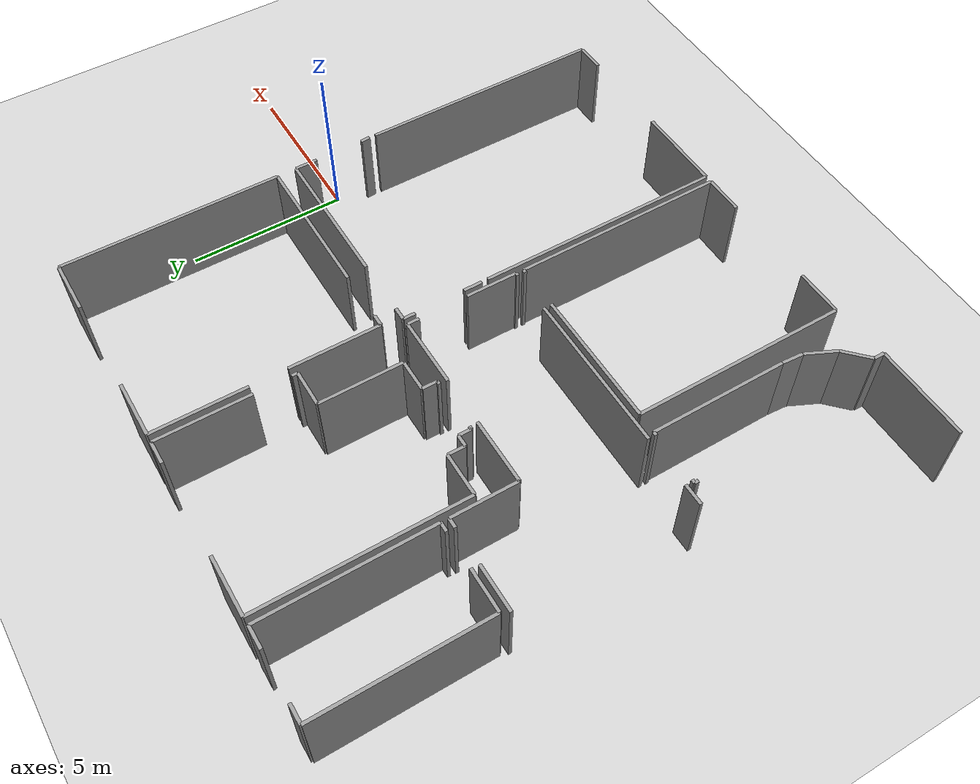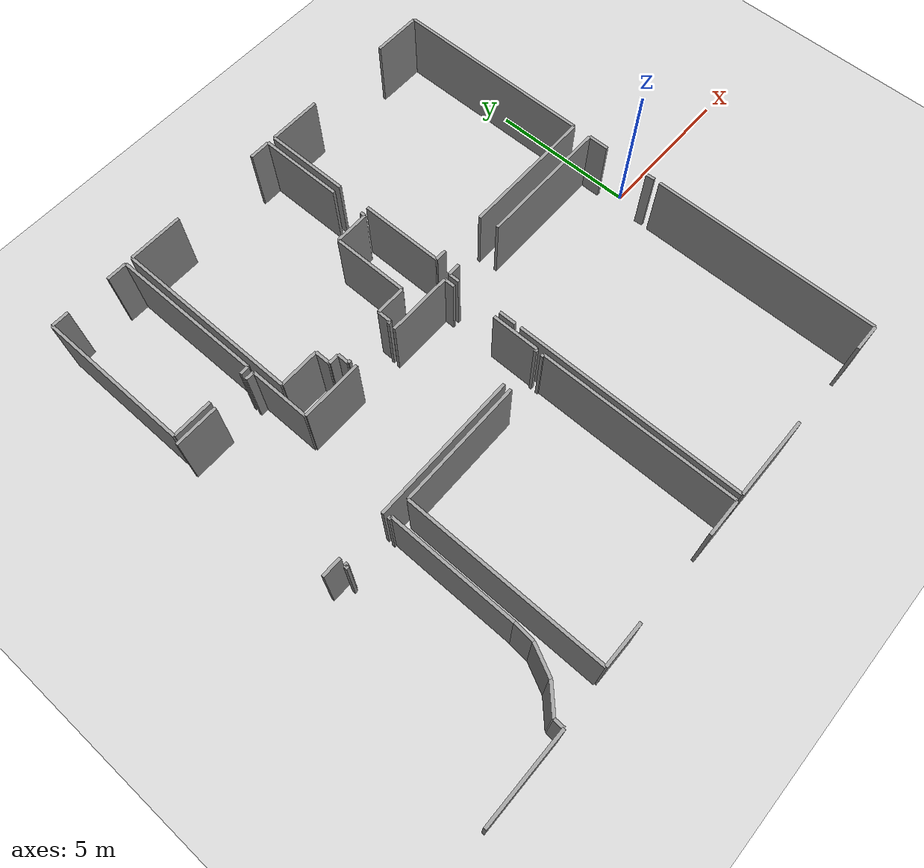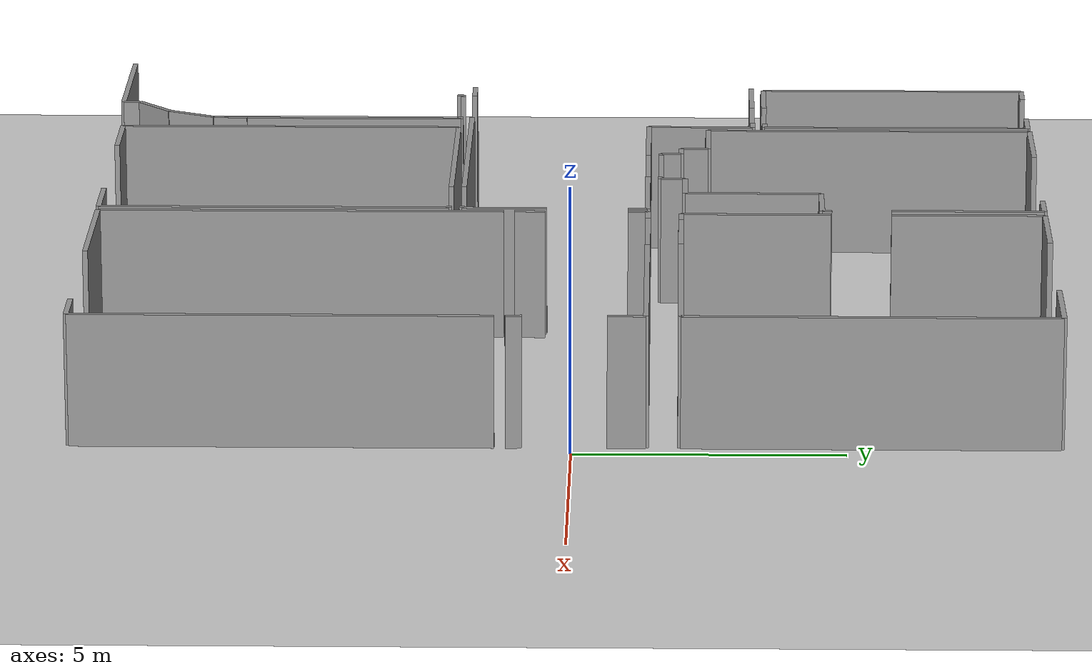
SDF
<sdf version="1.6">
 <world name="default">
  <model name="ground_plane">
   <static>1</static>
   <link name="link">
    <collision name="collision">
     <geometry><plane><normal>0 0 1</normal><size>100 100</size></plane></geometry>
     <surface><friction><ode><mu>100</mu><mu2>50</mu2></ode></friction></surface>
    </collision>
    <visual name="visual">
     <cast_shadows>0</cast_shadows>
     <geometry><plane><normal>0 0 1</normal><size>100 100</size></plane></geometry>
     <material>
      <script><uri>file://media/materials/scripts/gazebo.material</uri><name>Gazebo/Grey</name></script>
     </material>
    </visual>
   </link>
  </model>
  <model name="0510034869_A-40">
   <static>1</static>
   <link name="Wall_48">
    <collision name="Wall_48_Collision">
     <geometry><box><size>2.9826031746 0.1 2.5</size></box></geometry>
     <pose>1.4913015873 0 1.25 0 0 0</pose>
    </collision>
    <visual name="Wall_48_Visual">
     <pose>1.4913015873 0 1.25 0 0 0</pose>
     <geometry><box><size>2.9826031746 0.1 2.5</size></box></geometry>
     <material>
      <script><uri>file://media/materials/scripts/gazebo.material</uri><name>Gazebo/Grey</name></script>
      <ambient>1 1 1 1</ambient>
     </material>
    </visual>
    <pose>17.5939047619 -18.5479365079 0 0 0 3.14159265359</pose>
   </link>
   <link name="Wall_61">
    <collision name="Wall_61_Collision">
     <geometry><box><size>0.119238095238 0.1 2.5</size></box></geometry>
     <pose>0.059619047619 0 1.25 0 0 0</pose>
    </collision>
    <visual name="Wall_61_Visual">
     <pose>0.059619047619 0 1.25 0 0 0</pose>
     <geometry><box><size>0.119238095238 0.1 2.5</size></box></geometry>
     <material>
      <script><uri>file://media/materials/scripts/gazebo.material</uri><name>Gazebo/Grey</name></script>
      <ambient>1 1 1 1</ambient>
     </material>
    </visual>
    <pose>16.9984761905 -11.8361904762 0 0 0 1.57079632679</pose>
   </link>
   <link name="Wall_62">
    <collision name="Wall_62_Collision">
     <geometry><box><size>0.102476190476 0.1 2.5</size></box></geometry>
     <pose>0.0512380952381 0 1.25 0 0 0</pose>
    </collision>
    <visual name="Wall_62_Visual">
     <pose>0.0512380952381 0 1.25 0 0 0</pose>
     <geometry><box><size>0.102476190476 0.1 2.5</size></box></geometry>
     <material>
      <script><uri>file://media/materials/scripts/gazebo.material</uri><name>Gazebo/Grey</name></script>
      <ambient>1 1 1 1</ambient>
     </material>
    </visual>
    <pose>16.9984761905 -11.716952381 0 0 0 0.0</pose>
   </link>
   <link name="Wall_63">
    <collision name="Wall_63_Collision">
     <geometry><box><size>0.113650793651 0.1 2.5</size></box></geometry>
     <pose>0.0568253968254 0 1.25 0 0 0</pose>
    </collision>
    <visual name="Wall_63_Visual">
     <pose>0.0568253968254 0 1.25 0 0 0</pose>
     <geometry><box><size>0.113650793651 0.1 2.5</size></box></geometry>
     <material>
      <script><uri>file://media/materials/scripts/gazebo.material</uri><name>Gazebo/Grey</name></script>
      <ambient>1 1 1 1</ambient>
     </material>
    </visual>
    <pose>18.6581587302 -11.716952381 0 0 0 0.0</pose>
   </link>
   <link name="Wall_64">
    <collision name="Wall_64_Collision">
     <geometry><box><size>4.26641269841 0.1 2.5</size></box></geometry>
     <pose>2.13320634921 0 1.25 0 0 0</pose>
    </collision>
    <visual name="Wall_64_Visual">
     <pose>2.13320634921 0 1.25 0 0 0</pose>
     <geometry><box><size>4.26641269841 0.1 2.5</size></box></geometry>
     <material>
      <script><uri>file://media/materials/scripts/gazebo.material</uri><name>Gazebo/Grey</name></script>
      <ambient>1 1 1 1</ambient>
     </material>
    </visual>
    <pose>18.7718095238 -11.716952381 0 0 0 -1.57079632679</pose>
   </link>
   <link name="Wall_65">
    <collision name="Wall_65_Collision">
     <geometry><box><size>0.671112060188 0.1 2.5</size></box></geometry>
     <pose>0.335556030094 0 1.25 0 0 0</pose>
    </collision>
    <visual name="Wall_65_Visual">
     <pose>0.335556030094 0 1.25 0 0 0</pose>
     <geometry><box><size>0.671112060188 0.1 2.5</size></box></geometry>
     <material>
      <script><uri>file://media/materials/scripts/gazebo.material</uri><name>Gazebo/Grey</name></script>
      <ambient>1 1 1 1</ambient>
     </material>
    </visual>
    <pose>18.7718095238 -15.9833650794 0 0 0 -1.64617505707</pose>
   </link>
   <link name="Wall_66">
    <collision name="Wall_66_Collision">
     <geometry><box><size>1.00820407697 0.1 2.5</size></box></geometry>
     <pose>0.504102038486 0 1.25 0 0 0</pose>
    </collision>
    <visual name="Wall_66_Visual">
     <pose>0.504102038486 0 1.25 0 0 0</pose>
     <geometry><box><size>1.00820407697 0.1 2.5</size></box></geometry>
     <material>
      <script><uri>file://media/materials/scripts/gazebo.material</uri><name>Gazebo/Grey</name></script>
      <ambient>1 1 1 1</ambient>
     </material>
    </visual>
    <pose>18.7212698413 -16.6525714286 0 0 0 -2.01765772602</pose>
   </link>
   <link name="Wall_67">
    <collision name="Wall_67_Collision">
     <geometry><box><size>0.951063308609 0.1 2.5</size></box></geometry>
     <pose>0.475531654304 0 1.25 0 0 0</pose>
    </collision>
    <visual name="Wall_67_Visual">
     <pose>0.475531654304 0 1.25 0 0 0</pose>
     <geometry><box><size>0.951063308609 0.1 2.5</size></box></geometry>
     <material>
      <script><uri>file://media/materials/scripts/gazebo.material</uri><name>Gazebo/Grey</name></script>
      <ambient>1 1 1 1</ambient>
     </material>
    </visual>
    <pose>18.2855873016 -17.5617777778 0 0 0 -2.37970512576</pose>
   </link>
   <link name="Wall_68">
    <collision name="Wall_68_Collision">
     <geometry><box><size>0.329669967892 0.1 2.5</size></box></geometry>
     <pose>0.164834983946 0 1.25 0 0 0</pose>
    </collision>
    <visual name="Wall_68_Visual">
     <pose>0.164834983946 0 1.25 0 0 0</pose>
     <geometry><box><size>0.329669967892 0.1 2.5</size></box></geometry>
     <material>
      <script><uri>file://media/materials/scripts/gazebo.material</uri><name>Gazebo/Grey</name></script>
      <ambient>1 1 1 1</ambient>
     </material>
    </visual>
    <pose>17.5974603175 -18.2182857143 0 0 0 -1.58158173292</pose>
   </link>
   <link name="Wall_69">
    <collision name="Wall_69_Collision">
     <geometry><box><size>0.101333333333 0.1 2.5</size></box></geometry>
     <pose>0.0506666666667 0 1.25 0 0 0</pose>
    </collision>
    <visual name="Wall_69_Visual">
     <pose>0.0506666666667 0 1.25 0 0 0</pose>
     <geometry><box><size>0.101333333333 0.1 2.5</size></box></geometry>
     <material>
      <script><uri>file://media/materials/scripts/gazebo.material</uri><name>Gazebo/Grey</name></script>
      <ambient>1 1 1 1</ambient>
     </material>
    </visual>
    <pose>25.1734603175 -11.4876190476 0 0 0 3.14159265359</pose>
   </link>
   <link name="Wall_70">
    <collision name="Wall_70_Collision">
     <geometry><box><size>5.04101587302 0.1 2.5</size></box></geometry>
     <pose>2.52050793651 0 1.25 0 0 0</pose>
    </collision>
    <visual name="Wall_70_Visual">
     <pose>2.52050793651 0 1.25 0 0 0</pose>
     <geometry><box><size>5.04101587302 0.1 2.5</size></box></geometry>
     <material>
      <script><uri>file://media/materials/scripts/gazebo.material</uri><name>Gazebo/Grey</name></script>
      <ambient>1 1 1 1</ambient>
     </material>
    </visual>
    <pose>23.7102222222 -11.4876190476 0 0 0 3.14159265359</pose>
   </link>
   <link name="Wall_71">
    <collision name="Wall_71_Collision">
     <geometry><box><size>0.660317460317 0.1 2.5</size></box></geometry>
     <pose>0.330158730159 0 1.25 0 0 0</pose>
    </collision>
    <visual name="Wall_71_Visual">
     <pose>0.330158730159 0 1.25 0 0 0</pose>
     <geometry><box><size>0.660317460317 0.1 2.5</size></box></geometry>
     <material>
      <script><uri>file://media/materials/scripts/gazebo.material</uri><name>Gazebo/Grey</name></script>
      <ambient>1 1 1 1</ambient>
     </material>
    </visual>
    <pose>17.0683174603 -11.4876190476 0 0 0 3.14159265359</pose>
   </link>
   <link name="Wall_73">
    <collision name="Wall_73_Collision">
     <geometry><box><size>1.45968253968 0.1 2.5</size></box></geometry>
     <pose>0.729841269841 0 1.25 0 0 0</pose>
    </collision>
    <visual name="Wall_73_Visual">
     <pose>0.729841269841 0 1.25 0 0 0</pose>
     <geometry><box><size>1.45968253968 0.1 2.5</size></box></geometry>
     <material>
      <script><uri>file://media/materials/scripts/gazebo.material</uri><name>Gazebo/Grey</name></script>
      <ambient>1 1 1 1</ambient>
     </material>
    </visual>
    <pose>16.408 -5.89320634921 0 0 0 0.0</pose>
   </link>
   <link name="Wall_74">
    <collision name="Wall_74_Collision">
     <geometry><box><size>0.309333333333 0.1 2.5</size></box></geometry>
     <pose>0.154666666667 0 1.25 0 0 0</pose>
    </collision>
    <visual name="Wall_74_Visual">
     <pose>0.154666666667 0 1.25 0 0 0</pose>
     <geometry><box><size>0.309333333333 0.1 2.5</size></box></geometry>
     <material>
      <script><uri>file://media/materials/scripts/gazebo.material</uri><name>Gazebo/Grey</name></script>
      <ambient>1 1 1 1</ambient>
     </material>
    </visual>
    <pose>19.0306031746 -5.89320634921 0 0 0 0.0</pose>
   </link>
   <link name="Wall_75">
    <collision name="Wall_75_Collision">
     <geometry><box><size>2.05892063492 0.1 2.5</size></box></geometry>
     <pose>1.02946031746 0 1.25 0 0 0</pose>
    </collision>
    <visual name="Wall_75_Visual">
     <pose>1.02946031746 0 1.25 0 0 0</pose>
     <geometry><box><size>2.05892063492 0.1 2.5</size></box></geometry>
     <material>
      <script><uri>file://media/materials/scripts/gazebo.material</uri><name>Gazebo/Grey</name></script>
      <ambient>1 1 1 1</ambient>
     </material>
    </visual>
    <pose>19.3399365079 -5.89320634921 0 0 0 -1.57079632679</pose>
   </link>
   <link name="Wall_76">
    <collision name="Wall_76_Collision">
     <geometry><box><size>2.07301587302 0.1 2.5</size></box></geometry>
     <pose>1.03650793651 0 1.25 0 0 0</pose>
    </collision>
    <visual name="Wall_76_Visual">
     <pose>1.03650793651 0 1.25 0 0 0</pose>
     <geometry><box><size>2.07301587302 0.1 2.5</size></box></geometry>
     <material>
      <script><uri>file://media/materials/scripts/gazebo.material</uri><name>Gazebo/Grey</name></script>
      <ambient>1 1 1 1</ambient>
     </material>
    </visual>
    <pose>19.3399365079 -7.95212698413 0 0 0 0.0</pose>
   </link>
   <link name="Wall_77">
    <collision name="Wall_77_Collision">
     <geometry><box><size>2.21803174603 0.1 2.5</size></box></geometry>
     <pose>1.10901587302 0 1.25 0 0 0</pose>
    </collision>
    <visual name="Wall_77_Visual">
     <pose>1.10901587302 0 1.25 0 0 0</pose>
     <geometry><box><size>2.21803174603 0.1 2.5</size></box></geometry>
     <material>
      <script><uri>file://media/materials/scripts/gazebo.material</uri><name>Gazebo/Grey</name></script>
      <ambient>1 1 1 1</ambient>
     </material>
    </visual>
    <pose>22.9612698413 -7.95212698413 0 0 0 0.0</pose>
   </link>
   <link name="Wall_78">
    <collision name="Wall_78_Collision">
     <geometry><box><size>0.369777777778 0.1 2.5</size></box></geometry>
     <pose>0.184888888889 0 1.25 0 0 0</pose>
    </collision>
    <visual name="Wall_78_Visual">
     <pose>0.184888888889 0 1.25 0 0 0</pose>
     <geometry><box><size>0.369777777778 0.1 2.5</size></box></geometry>
     <material>
      <script><uri>file://media/materials/scripts/gazebo.material</uri><name>Gazebo/Grey</name></script>
      <ambient>1 1 1 1</ambient>
     </material>
    </visual>
    <pose>25.1793015873 -7.95212698413 0 0 0 -1.57079632679</pose>
   </link>
   <link name="Wall_79">
    <collision name="Wall_79_Collision">
     <geometry><box><size>1.61982005601 0.1 2.5</size></box></geometry>
     <pose>0.809910028006 0 1.25 0 0 0</pose>
    </collision>
    <visual name="Wall_79_Visual">
     <pose>0.809910028006 0 1.25 0 0 0</pose>
     <geometry><box><size>1.61982005601 0.1 2.5</size></box></geometry>
     <material>
      <script><uri>file://media/materials/scripts/gazebo.material</uri><name>Gazebo/Grey</name></script>
      <ambient>1 1 1 1</ambient>
     </material>
    </visual>
    <pose>25.1793015873 -9.86780952381 0 0 0 -1.57440245729</pose>
   </link>
   <link name="Wall_80">
    <collision name="Wall_80_Collision">
     <geometry><box><size>0.299555555556 0.1 2.5</size></box></geometry>
     <pose>0.149777777778 0 1.25 0 0 0</pose>
    </collision>
    <visual name="Wall_80_Visual">
     <pose>0.149777777778 0 1.25 0 0 0</pose>
     <geometry><box><size>0.299555555556 0.1 2.5</size></box></geometry>
     <material>
      <script><uri>file://media/materials/scripts/gazebo.material</uri><name>Gazebo/Grey</name></script>
      <ambient>1 1 1 1</ambient>
     </material>
    </visual>
    <pose>19.3490793651 -5.65358730159 0 0 0 3.14159265359</pose>
   </link>
   <link name="Wall_81">
    <collision name="Wall_81_Collision">
     <geometry><box><size>1.35034920635 0.1 2.5</size></box></geometry>
     <pose>0.675174603175 0 1.25 0 0 0</pose>
    </collision>
    <visual name="Wall_81_Visual">
     <pose>0.675174603175 0 1.25 0 0 0</pose>
     <geometry><box><size>1.35034920635 0.1 2.5</size></box></geometry>
     <material>
      <script><uri>file://media/materials/scripts/gazebo.material</uri><name>Gazebo/Grey</name></script>
      <ambient>1 1 1 1</ambient>
     </material>
    </visual>
    <pose>17.8915555556 -5.65358730159 0 0 0 3.14159265359</pose>
   </link>
   <link name="Wall_82">
    <collision name="Wall_82_Collision">
     <geometry><box><size>5.22628571429 0.1 2.5</size></box></geometry>
     <pose>2.61314285714 0 1.25 0 0 0</pose>
    </collision>
    <visual name="Wall_82_Visual">
     <pose>2.61314285714 0 1.25 0 0 0</pose>
     <geometry><box><size>5.22628571429 0.1 2.5</size></box></geometry>
     <material>
      <script><uri>file://media/materials/scripts/gazebo.material</uri><name>Gazebo/Grey</name></script>
      <ambient>1 1 1 1</ambient>
     </material>
    </visual>
    <pose>16.5412063492 -5.65358730159 0 0 0 1.57079632679</pose>
   </link>
   <link name="Wall_83">
    <collision name="Wall_83_Collision">
     <geometry><box><size>0.589079365079 0.1 2.5</size></box></geometry>
     <pose>0.29453968254 0 1.25 0 0 0</pose>
    </collision>
    <visual name="Wall_83_Visual">
     <pose>0.29453968254 0 1.25 0 0 0</pose>
     <geometry><box><size>0.589079365079 0.1 2.5</size></box></geometry>
     <material>
      <script><uri>file://media/materials/scripts/gazebo.material</uri><name>Gazebo/Grey</name></script>
      <ambient>1 1 1 1</ambient>
     </material>
    </visual>
    <pose>16.5412063492 -0.427301587302 0 0 0 0.0</pose>
   </link>
   <link name="Wall_84">
    <collision name="Wall_84_Collision">
     <geometry><box><size>0.70819047619 0.1 2.5</size></box></geometry>
     <pose>0.354095238095 0 1.25 0 0 0</pose>
    </collision>
    <visual name="Wall_84_Visual">
     <pose>0.354095238095 0 1.25 0 0 0</pose>
     <geometry><box><size>0.70819047619 0.1 2.5</size></box></geometry>
     <material>
      <script><uri>file://media/materials/scripts/gazebo.material</uri><name>Gazebo/Grey</name></script>
      <ambient>1 1 1 1</ambient>
     </material>
    </visual>
    <pose>18.627047619 -0.427301587302 0 0 0 0.0</pose>
   </link>
   <link name="Wall_85">
    <collision name="Wall_85_Collision">
     <geometry><box><size>5.22630404283 0.1 2.5</size></box></geometry>
     <pose>2.61315202141 0 1.25 0 0 0</pose>
    </collision>
    <visual name="Wall_85_Visual">
     <pose>2.61315202141 0 1.25 0 0 0</pose>
     <geometry><box><size>5.22630404283 0.1 2.5</size></box></geometry>
     <material>
      <script><uri>file://media/materials/scripts/gazebo.material</uri><name>Gazebo/Grey</name></script>
      <ambient>1 1 1 1</ambient>
     </material>
    </visual>
    <pose>19.3352380952 -0.427301587302 0 0 0 -1.56814793782</pose>
   </link>
   <link name="Wall_86">
    <collision name="Wall_86_Collision">
     <geometry><box><size>1.01333333333 0.1 2.5</size></box></geometry>
     <pose>0.506666666667 0 1.25 0 0 0</pose>
    </collision>
    <visual name="Wall_86_Visual">
     <pose>0.506666666667 0 1.25 0 0 0</pose>
     <geometry><box><size>1.01333333333 0.1 2.5</size></box></geometry>
     <material>
      <script><uri>file://media/materials/scripts/gazebo.material</uri><name>Gazebo/Grey</name></script>
      <ambient>1 1 1 1</ambient>
     </material>
    </visual>
    <pose>24.0971428571 -7.23263492063 0 0 0 3.14159265359</pose>
   </link>
   <link name="Wall_87">
    <collision name="Wall_87_Collision">
     <geometry><box><size>0.472761904762 0.1 2.5</size></box></geometry>
     <pose>0.236380952381 0 1.25 0 0 0</pose>
    </collision>
    <visual name="Wall_87_Visual">
     <pose>0.236380952381 0 1.25 0 0 0</pose>
     <geometry><box><size>0.472761904762 0.1 2.5</size></box></geometry>
     <material>
      <script><uri>file://media/materials/scripts/gazebo.material</uri><name>Gazebo/Grey</name></script>
      <ambient>1 1 1 1</ambient>
     </material>
    </visual>
    <pose>23.0838095238 -7.23263492063 0 0 0 -1.57079632679</pose>
   </link>
   <link name="Wall_88">
    <collision name="Wall_88_Collision">
     <geometry><box><size>0.106285714286 0.1 2.5</size></box></geometry>
     <pose>0.0531428571429 0 1.25 0 0 0</pose>
    </collision>
    <visual name="Wall_88_Visual">
     <pose>0.0531428571429 0 1.25 0 0 0</pose>
     <geometry><box><size>0.106285714286 0.1 2.5</size></box></geometry>
     <material>
      <script><uri>file://media/materials/scripts/gazebo.material</uri><name>Gazebo/Grey</name></script>
      <ambient>1 1 1 1</ambient>
     </material>
    </visual>
    <pose>23.0838095238 -7.7053968254 0 0 0 3.14159265359</pose>
   </link>
   <link name="Wall_89">
    <collision name="Wall_89_Collision">
     <geometry><box><size>0.10019047619 0.1 2.5</size></box></geometry>
     <pose>0.0500952380952 0 1.25 0 0 0</pose>
    </collision>
    <visual name="Wall_89_Visual">
     <pose>0.0500952380952 0 1.25 0 0 0</pose>
     <geometry><box><size>0.10019047619 0.1 2.5</size></box></geometry>
     <material>
      <script><uri>file://media/materials/scripts/gazebo.material</uri><name>Gazebo/Grey</name></script>
      <ambient>1 1 1 1</ambient>
     </material>
    </visual>
    <pose>21.4078730159 -7.7053968254 0 0 0 3.14159265359</pose>
   </link>
   <link name="Wall_90">
    <collision name="Wall_90_Collision">
     <geometry><box><size>0.392507936508 0.1 2.5</size></box></geometry>
     <pose>0.196253968254 0 1.25 0 0 0</pose>
    </collision>
    <visual name="Wall_90_Visual">
     <pose>0.196253968254 0 1.25 0 0 0</pose>
     <geometry><box><size>0.392507936508 0.1 2.5</size></box></geometry>
     <material>
      <script><uri>file://media/materials/scripts/gazebo.material</uri><name>Gazebo/Grey</name></script>
      <ambient>1 1 1 1</ambient>
     </material>
    </visual>
    <pose>21.3076825397 -7.7053968254 0 0 0 1.57079632679</pose>
   </link>
   <link name="Wall_91">
    <collision name="Wall_91_Collision">
     <geometry><box><size>0.358984126984 0.1 2.5</size></box></geometry>
     <pose>0.179492063492 0 1.25 0 0 0</pose>
    </collision>
    <visual name="Wall_91_Visual">
     <pose>0.179492063492 0 1.25 0 0 0</pose>
     <geometry><box><size>0.358984126984 0.1 2.5</size></box></geometry>
     <material>
      <script><uri>file://media/materials/scripts/gazebo.material</uri><name>Gazebo/Grey</name></script>
      <ambient>1 1 1 1</ambient>
     </material>
    </visual>
    <pose>21.3076825397 -7.31288888889 0 0 0 3.14159265359</pose>
   </link>
   <link name="Wall_92">
    <collision name="Wall_92_Collision">
     <geometry><box><size>0.534349206349 0.1 2.5</size></box></geometry>
     <pose>0.267174603175 0 1.25 0 0 0</pose>
    </collision>
    <visual name="Wall_92_Visual">
     <pose>0.267174603175 0 1.25 0 0 0</pose>
     <geometry><box><size>0.534349206349 0.1 2.5</size></box></geometry>
     <material>
      <script><uri>file://media/materials/scripts/gazebo.material</uri><name>Gazebo/Grey</name></script>
      <ambient>1 1 1 1</ambient>
     </material>
    </visual>
    <pose>20.9486984127 -7.31288888889 0 0 0 1.57079632679</pose>
   </link>
   <link name="Wall_93">
    <collision name="Wall_93_Collision">
     <geometry><box><size>1.36101587302 0.1 2.5</size></box></geometry>
     <pose>0.680507936508 0 1.25 0 0 0</pose>
    </collision>
    <visual name="Wall_93_Visual">
     <pose>0.680507936508 0 1.25 0 0 0</pose>
     <geometry><box><size>1.36101587302 0.1 2.5</size></box></geometry>
     <material>
      <script><uri>file://media/materials/scripts/gazebo.material</uri><name>Gazebo/Grey</name></script>
      <ambient>1 1 1 1</ambient>
     </material>
    </visual>
    <pose>20.9486984127 -6.77853968254 0 0 0 3.14159265359</pose>
   </link>
   <link name="Wall_94">
    <collision name="Wall_94_Collision">
     <geometry><box><size>6.37053968254 0.1 2.5</size></box></geometry>
     <pose>3.18526984127 0 1.25 0 0 0</pose>
    </collision>
    <visual name="Wall_94_Visual">
     <pose>3.18526984127 0 1.25 0 0 0</pose>
     <geometry><box><size>6.37053968254 0.1 2.5</size></box></geometry>
     <material>
      <script><uri>file://media/materials/scripts/gazebo.material</uri><name>Gazebo/Grey</name></script>
      <ambient>1 1 1 1</ambient>
     </material>
    </visual>
    <pose>19.5876825397 -6.77853968254 0 0 0 1.57079632679</pose>
   </link>
   <link name="Wall_95">
    <collision name="Wall_95_Collision">
     <geometry><box><size>1.8673015873 0.1 2.5</size></box></geometry>
     <pose>0.933650793651 0 1.25 0 0 0</pose>
    </collision>
    <visual name="Wall_95_Visual">
     <pose>0.933650793651 0 1.25 0 0 0</pose>
     <geometry><box><size>1.8673015873 0.1 2.5</size></box></geometry>
     <material>
      <script><uri>file://media/materials/scripts/gazebo.material</uri><name>Gazebo/Grey</name></script>
      <ambient>1 1 1 1</ambient>
     </material>
    </visual>
    <pose>19.5876825397 -0.408 0 0 0 0.0</pose>
   </link>
   <link name="Wall_96">
    <collision name="Wall_96_Collision">
     <geometry><box><size>0.741206349206 0.1 2.5</size></box></geometry>
     <pose>0.370603174603 0 1.25 0 0 0</pose>
    </collision>
    <visual name="Wall_96_Visual">
     <pose>0.370603174603 0 1.25 0 0 0</pose>
     <geometry><box><size>0.741206349206 0.1 2.5</size></box></geometry>
     <material>
      <script><uri>file://media/materials/scripts/gazebo.material</uri><name>Gazebo/Grey</name></script>
      <ambient>1 1 1 1</ambient>
     </material>
    </visual>
    <pose>24.5231746032 -0.408 0 0 0 0.0</pose>
   </link>
   <link name="Wall_97">
    <collision name="Wall_97_Collision">
     <geometry><box><size>2.90184126984 0.1 2.5</size></box></geometry>
     <pose>1.45092063492 0 1.25 0 0 0</pose>
    </collision>
    <visual name="Wall_97_Visual">
     <pose>1.45092063492 0 1.25 0 0 0</pose>
     <geometry><box><size>2.90184126984 0.1 2.5</size></box></geometry>
     <material>
      <script><uri>file://media/materials/scripts/gazebo.material</uri><name>Gazebo/Grey</name></script>
      <ambient>1 1 1 1</ambient>
     </material>
    </visual>
    <pose>25.2643809524 -0.408 0 0 0 -1.57079632679</pose>
   </link>
   <link name="Wall_98">
    <collision name="Wall_98_Collision">
     <geometry><box><size>0.18146031746 0.1 2.5</size></box></geometry>
     <pose>0.0907301587302 0 1.25 0 0 0</pose>
    </collision>
    <visual name="Wall_98_Visual">
     <pose>0.0907301587302 0 1.25 0 0 0</pose>
     <geometry><box><size>0.18146031746 0.1 2.5</size></box></geometry>
     <material>
      <script><uri>file://media/materials/scripts/gazebo.material</uri><name>Gazebo/Grey</name></script>
      <ambient>1 1 1 1</ambient>
     </material>
    </visual>
    <pose>25.2643809524 -4.44546031746 0 0 0 -1.57079632679</pose>
   </link>
   <link name="Wall_99">
    <collision name="Wall_99_Collision">
     <geometry><box><size>1.16507936508 0.1 2.5</size></box></geometry>
     <pose>0.58253968254 0 1.25 0 0 0</pose>
    </collision>
    <visual name="Wall_99_Visual">
     <pose>0.58253968254 0 1.25 0 0 0</pose>
     <geometry><box><size>1.16507936508 0.1 2.5</size></box></geometry>
     <material>
      <script><uri>file://media/materials/scripts/gazebo.material</uri><name>Gazebo/Grey</name></script>
      <ambient>1 1 1 1</ambient>
     </material>
    </visual>
    <pose>25.2643809524 -4.62692063492 0 0 0 3.14159265359</pose>
   </link>
   <link name="Wall_100">
    <collision name="Wall_100_Collision">
     <geometry><box><size>2.60571517992 0.1 2.5</size></box></geometry>
     <pose>1.30285758996 0 1.25 0 0 0</pose>
    </collision>
    <visual name="Wall_100_Visual">
     <pose>1.30285758996 0 1.25 0 0 0</pose>
     <geometry><box><size>2.60571517992 0.1 2.5</size></box></geometry>
     <material>
      <script><uri>file://media/materials/scripts/gazebo.material</uri><name>Gazebo/Grey</name></script>
      <ambient>1 1 1 1</ambient>
     </material>
    </visual>
    <pose>24.0993015873 -4.62692063492 0 0 0 -1.57162478664</pose>
   </link>
   <link name="Wall_101">
    <collision name="Wall_101_Collision">
     <geometry><box><size>1.25193650794 0.1 2.5</size></box></geometry>
     <pose>0.625968253968 0 1.25 0 0 0</pose>
    </collision>
    <visual name="Wall_101_Visual">
     <pose>0.625968253968 0 1.25 0 0 0</pose>
     <geometry><box><size>1.25193650794 0.1 2.5</size></box></geometry>
     <material>
      <script><uri>file://media/materials/scripts/gazebo.material</uri><name>Gazebo/Grey</name></script>
      <ambient>1 1 1 1</ambient>
     </material>
    </visual>
    <pose>25.1696507937 -18.4134603175 0 0 0 3.14159265359</pose>
   </link>
   <link name="Wall_102">
    <collision name="Wall_102_Collision">
     <geometry><box><size>1.46653968254 0.1 2.5</size></box></geometry>
     <pose>0.73326984127 0 1.25 0 0 0</pose>
    </collision>
    <visual name="Wall_102_Visual">
     <pose>0.73326984127 0 1.25 0 0 0</pose>
     <geometry><box><size>1.46653968254 0.1 2.5</size></box></geometry>
     <material>
      <script><uri>file://media/materials/scripts/gazebo.material</uri><name>Gazebo/Grey</name></script>
      <ambient>1 1 1 1</ambient>
     </material>
    </visual>
    <pose>20.8829206349 -18.4134603175 0 0 0 3.14159265359</pose>
   </link>
   <link name="Wall_103">
    <collision name="Wall_103_Collision">
     <geometry><box><size>6.6786031746 0.1 2.5</size></box></geometry>
     <pose>3.3393015873 0 1.25 0 0 0</pose>
    </collision>
    <visual name="Wall_103_Visual">
     <pose>3.3393015873 0 1.25 0 0 0</pose>
     <geometry><box><size>6.6786031746 0.1 2.5</size></box></geometry>
     <material>
      <script><uri>file://media/materials/scripts/gazebo.material</uri><name>Gazebo/Grey</name></script>
      <ambient>1 1 1 1</ambient>
     </material>
    </visual>
    <pose>19.4163809524 -18.4134603175 0 0 0 1.57079632679</pose>
   </link>
   <link name="Wall_104">
    <collision name="Wall_104_Collision">
     <geometry><box><size>4.29244444444 0.1 2.5</size></box></geometry>
     <pose>2.14622222222 0 1.25 0 0 0</pose>
    </collision>
    <visual name="Wall_104_Visual">
     <pose>2.14622222222 0 1.25 0 0 0</pose>
     <geometry><box><size>4.29244444444 0.1 2.5</size></box></geometry>
     <material>
      <script><uri>file://media/materials/scripts/gazebo.material</uri><name>Gazebo/Grey</name></script>
      <ambient>1 1 1 1</ambient>
     </material>
    </visual>
    <pose>19.4163809524 -11.7348571429 0 0 0 0.0</pose>
   </link>
   <link name="Wall_105">
    <collision name="Wall_105_Collision">
     <geometry><box><size>0.10019047619 0.1 2.5</size></box></geometry>
     <pose>0.0500952380952 0 1.25 0 0 0</pose>
    </collision>
    <visual name="Wall_105_Visual">
     <pose>0.0500952380952 0 1.25 0 0 0</pose>
     <geometry><box><size>0.10019047619 0.1 2.5</size></box></geometry>
     <material>
      <script><uri>file://media/materials/scripts/gazebo.material</uri><name>Gazebo/Grey</name></script>
      <ambient>1 1 1 1</ambient>
     </material>
    </visual>
    <pose>25.0648888889 -11.7348571429 0 0 0 0.0</pose>
   </link>
   <link name="Wall_106">
    <collision name="Wall_106_Collision">
     <geometry><box><size>6.67860473915 0.1 2.5</size></box></geometry>
     <pose>3.33930236957 0 1.25 0 0 0</pose>
    </collision>
    <visual name="Wall_106_Visual">
     <pose>3.33930236957 0 1.25 0 0 0</pose>
     <geometry><box><size>6.67860473915 0.1 2.5</size></box></geometry>
     <material>
      <script><uri>file://media/materials/scripts/gazebo.material</uri><name>Gazebo/Grey</name></script>
      <ambient>1 1 1 1</ambient>
     </material>
    </visual>
    <pose>25.1650793651 -11.7348571429 0 0 0 -1.57011183818</pose>
   </link>
   <link name="Wall_107">
    <collision name="Wall_107_Collision">
     <geometry><box><size>4.62704761905 0.1 2.5</size></box></geometry>
     <pose>2.31352380952 0 1.25 0 0 0</pose>
    </collision>
    <visual name="Wall_107_Visual">
     <pose>2.31352380952 0 1.25 0 0 0</pose>
     <geometry><box><size>4.62704761905 0.1 2.5</size></box></geometry>
     <material>
      <script><uri>file://media/materials/scripts/gazebo.material</uri><name>Gazebo/Grey</name></script>
      <ambient>1 1 1 1</ambient>
     </material>
    </visual>
    <pose>32.1362539683 -7.31161904762 0 0 0 3.14159265359</pose>
   </link>
   <link name="Wall_108">
    <collision name="Wall_108_Collision">
     <geometry><box><size>0.385777777778 0.1 2.5</size></box></geometry>
     <pose>0.192888888889 0 1.25 0 0 0</pose>
    </collision>
    <visual name="Wall_108_Visual">
     <pose>0.192888888889 0 1.25 0 0 0</pose>
     <geometry><box><size>0.385777777778 0.1 2.5</size></box></geometry>
     <material>
      <script><uri>file://media/materials/scripts/gazebo.material</uri><name>Gazebo/Grey</name></script>
      <ambient>1 1 1 1</ambient>
     </material>
    </visual>
    <pose>25.9191111111 -7.31161904762 0 0 0 3.14159265359</pose>
   </link>
   <link name="Wall_109">
    <collision name="Wall_109_Collision">
     <geometry><box><size>2.84380952381 0.1 2.5</size></box></geometry>
     <pose>1.4219047619 0 1.25 0 0 0</pose>
    </collision>
    <visual name="Wall_109_Visual">
     <pose>1.4219047619 0 1.25 0 0 0</pose>
     <geometry><box><size>2.84380952381 0.1 2.5</size></box></geometry>
     <material>
      <script><uri>file://media/materials/scripts/gazebo.material</uri><name>Gazebo/Grey</name></script>
      <ambient>1 1 1 1</ambient>
     </material>
    </visual>
    <pose>25.5333333333 -7.31161904762 0 0 0 1.57079632679</pose>
   </link>
   <link name="Wall_110">
    <collision name="Wall_110_Collision">
     <geometry><box><size>2.90933333333 0.1 2.5</size></box></geometry>
     <pose>1.45466666667 0 1.25 0 0 0</pose>
    </collision>
    <visual name="Wall_110_Visual">
     <pose>1.45466666667 0 1.25 0 0 0</pose>
     <geometry><box><size>2.90933333333 0.1 2.5</size></box></geometry>
     <material>
      <script><uri>file://media/materials/scripts/gazebo.material</uri><name>Gazebo/Grey</name></script>
      <ambient>1 1 1 1</ambient>
     </material>
    </visual>
    <pose>25.5333333333 -3.31936507937 0 0 0 1.57079632679</pose>
   </link>
   <link name="Wall_111">
    <collision name="Wall_111_Collision">
     <geometry><box><size>1.83085714286 0.1 2.5</size></box></geometry>
     <pose>0.915428571429 0 1.25 0 0 0</pose>
    </collision>
    <visual name="Wall_111_Visual">
     <pose>0.915428571429 0 1.25 0 0 0</pose>
     <geometry><box><size>1.83085714286 0.1 2.5</size></box></geometry>
     <material>
      <script><uri>file://media/materials/scripts/gazebo.material</uri><name>Gazebo/Grey</name></script>
      <ambient>1 1 1 1</ambient>
     </material>
    </visual>
    <pose>25.5333333333 -0.410031746032 0 0 0 0.0</pose>
   </link>
   <link name="Wall_112">
    <collision name="Wall_112_Collision">
     <geometry><box><size>1.71733333333 0.1 2.5</size></box></geometry>
     <pose>0.858666666667 0 1.25 0 0 0</pose>
    </collision>
    <visual name="Wall_112_Visual">
     <pose>0.858666666667 0 1.25 0 0 0</pose>
     <geometry><box><size>1.71733333333 0.1 2.5</size></box></geometry>
     <material>
      <script><uri>file://media/materials/scripts/gazebo.material</uri><name>Gazebo/Grey</name></script>
      <ambient>1 1 1 1</ambient>
     </material>
    </visual>
    <pose>30.4261587302 -0.410031746032 0 0 0 0.0</pose>
   </link>
   <link name="Wall_113">
    <collision name="Wall_113_Collision">
     <geometry><box><size>6.90159109709 0.1 2.5</size></box></geometry>
     <pose>3.45079554855 0 1.25 0 0 0</pose>
    </collision>
    <visual name="Wall_113_Visual">
     <pose>3.45079554855 0 1.25 0 0 0</pose>
     <geometry><box><size>6.90159109709 0.1 2.5</size></box></geometry>
     <material>
      <script><uri>file://media/materials/scripts/gazebo.material</uri><name>Gazebo/Grey</name></script>
      <ambient>1 1 1 1</ambient>
     </material>
    </visual>
    <pose>32.1434920635 -0.410031746032 0 0 0 -1.57184508446</pose>
   </link>
   <link name="Wall_121">
    <collision name="Wall_121_Collision">
     <geometry><box><size>0.929396825397 0.1 2.5</size></box></geometry>
     <pose>0.464698412698 0 1.25 0 0 0</pose>
    </collision>
    <visual name="Wall_121_Visual">
     <pose>0.464698412698 0 1.25 0 0 0</pose>
     <geometry><box><size>0.929396825397 0.1 2.5</size></box></geometry>
     <material>
      <script><uri>file://media/materials/scripts/gazebo.material</uri><name>Gazebo/Grey</name></script>
      <ambient>1 1 1 1</ambient>
     </material>
    </visual>
    <pose>32.1578412698 -18.4072380952 0 0 0 3.14159265359</pose>
   </link>
   <link name="Wall_122">
    <collision name="Wall_122_Collision">
     <geometry><box><size>2.78806349206 0.1 2.5</size></box></geometry>
     <pose>1.39403174603 0 1.25 0 0 0</pose>
    </collision>
    <visual name="Wall_122_Visual">
     <pose>1.39403174603 0 1.25 0 0 0</pose>
     <geometry><box><size>2.78806349206 0.1 2.5</size></box></geometry>
     <material>
      <script><uri>file://media/materials/scripts/gazebo.material</uri><name>Gazebo/Grey</name></script>
      <ambient>1 1 1 1</ambient>
     </material>
    </visual>
    <pose>28.1941587302 -18.4072380952 0 0 0 3.14159265359</pose>
   </link>
   <link name="Wall_123">
    <collision name="Wall_123_Collision">
     <geometry><box><size>7.72114285714 0.1 2.5</size></box></geometry>
     <pose>3.86057142857 0 1.25 0 0 0</pose>
    </collision>
    <visual name="Wall_123_Visual">
     <pose>3.86057142857 0 1.25 0 0 0</pose>
     <geometry><box><size>7.72114285714 0.1 2.5</size></box></geometry>
     <material>
      <script><uri>file://media/materials/scripts/gazebo.material</uri><name>Gazebo/Grey</name></script>
      <ambient>1 1 1 1</ambient>
     </material>
    </visual>
    <pose>25.4060952381 -18.4072380952 0 0 0 1.57079632679</pose>
   </link>
   <link name="Wall_124">
    <collision name="Wall_124_Collision">
     <geometry><box><size>7.72114286654 0.1 2.5</size></box></geometry>
     <pose>3.86057143327 0 1.25 0 0 0</pose>
    </collision>
    <visual name="Wall_124_Visual">
     <pose>3.86057143327 0 1.25 0 0 0</pose>
     <geometry><box><size>7.72114286654 0.1 2.5</size></box></geometry>
     <material>
      <script><uri>file://media/materials/scripts/gazebo.material</uri><name>Gazebo/Grey</name></script>
      <ambient>1 1 1 1</ambient>
     </material>
    </visual>
    <pose>32.1582222222 -10.6860952381 0 0 0 -1.57084566565</pose>
   </link>
   <link name="Wall_129">
    <collision name="Wall_129_Collision">
     <geometry><box><size>0.584507936508 0.1 2.5</size></box></geometry>
     <pose>0.292253968254 0 1.25 0 0 0</pose>
    </collision>
    <visual name="Wall_129_Visual">
     <pose>0.292253968254 0 1.25 0 0 0</pose>
     <geometry><box><size>0.584507936508 0.1 2.5</size></box></geometry>
     <material>
      <script><uri>file://media/materials/scripts/gazebo.material</uri><name>Gazebo/Grey</name></script>
      <ambient>1 1 1 1</ambient>
     </material>
    </visual>
    <pose>25.3988571429 -10.4824126984 0 0 0 1.57079632679</pose>
   </link>
   <link name="Wall_130">
    <collision name="Wall_130_Collision">
     <geometry><box><size>0.384 0.1 2.5</size></box></geometry>
     <pose>0.192 0 1.25 0 0 0</pose>
    </collision>
    <visual name="Wall_130_Visual">
     <pose>0.192 0 1.25 0 0 0</pose>
     <geometry><box><size>0.384 0.1 2.5</size></box></geometry>
     <material>
      <script><uri>file://media/materials/scripts/gazebo.material</uri><name>Gazebo/Grey</name></script>
      <ambient>1 1 1 1</ambient>
     </material>
    </visual>
    <pose>25.3988571429 -8.32317460317 0 0 0 1.57079632679</pose>
   </link>
   <link name="Wall_131">
    <collision name="Wall_131_Collision">
     <geometry><box><size>0.425904761905 0.1 2.5</size></box></geometry>
     <pose>0.212952380952 0 1.25 0 0 0</pose>
    </collision>
    <visual name="Wall_131_Visual">
     <pose>0.212952380952 0 1.25 0 0 0</pose>
     <geometry><box><size>0.425904761905 0.1 2.5</size></box></geometry>
     <material>
      <script><uri>file://media/materials/scripts/gazebo.material</uri><name>Gazebo/Grey</name></script>
      <ambient>1 1 1 1</ambient>
     </material>
    </visual>
    <pose>25.3988571429 -7.93917460317 0 0 0 0.0</pose>
   </link>
   <link name="Wall_132">
    <collision name="Wall_132_Collision">
     <geometry><box><size>4.54844444444 0.1 2.5</size></box></geometry>
     <pose>2.27422222222 0 1.25 0 0 0</pose>
    </collision>
    <visual name="Wall_132_Visual">
     <pose>2.27422222222 0 1.25 0 0 0</pose>
     <geometry><box><size>4.54844444444 0.1 2.5</size></box></geometry>
     <material>
      <script><uri>file://media/materials/scripts/gazebo.material</uri><name>Gazebo/Grey</name></script>
      <ambient>1 1 1 1</ambient>
     </material>
    </visual>
    <pose>27.5953015873 -7.93917460317 0 0 0 0.0</pose>
   </link>
   <link name="Wall_133">
    <collision name="Wall_133_Collision">
     <geometry><box><size>0.70273015873 0.1 2.5</size></box></geometry>
     <pose>0.351365079365 0 1.25 0 0 0</pose>
    </collision>
    <visual name="Wall_133_Visual">
     <pose>0.351365079365 0 1.25 0 0 0</pose>
     <geometry><box><size>0.70273015873 0.1 2.5</size></box></geometry>
     <material>
      <script><uri>file://media/materials/scripts/gazebo.material</uri><name>Gazebo/Grey</name></script>
      <ambient>1 1 1 1</ambient>
     </material>
    </visual>
    <pose>32.1437460317 -7.93917460317 0 0 0 -1.57079632679</pose>
   </link>
   <link name="Wall_134">
    <collision name="Wall_134_Collision">
     <geometry><box><size>0.298374465636 0.1 2.5</size></box></geometry>
     <pose>0.149187232818 0 1.25 0 0 0</pose>
    </collision>
    <visual name="Wall_134_Visual">
     <pose>0.149187232818 0 1.25 0 0 0</pose>
     <geometry><box><size>0.298374465636 0.1 2.5</size></box></geometry>
     <material>
      <script><uri>file://media/materials/scripts/gazebo.material</uri><name>Gazebo/Grey</name></script>
      <ambient>1 1 1 1</ambient>
     </material>
    </visual>
    <pose>32.1437460317 -10.1851428571 0 0 0 -1.48472161919</pose>
   </link>
   <pose>-32.5 9.29793650794 0 0 0 0</pose>
  </model>
 </world>
</sdf>
